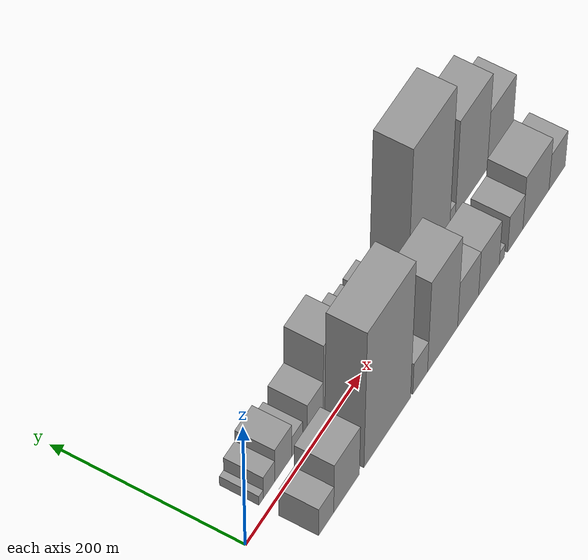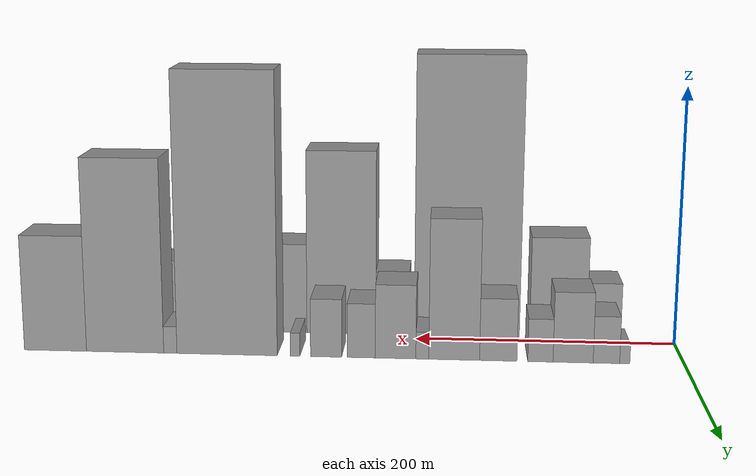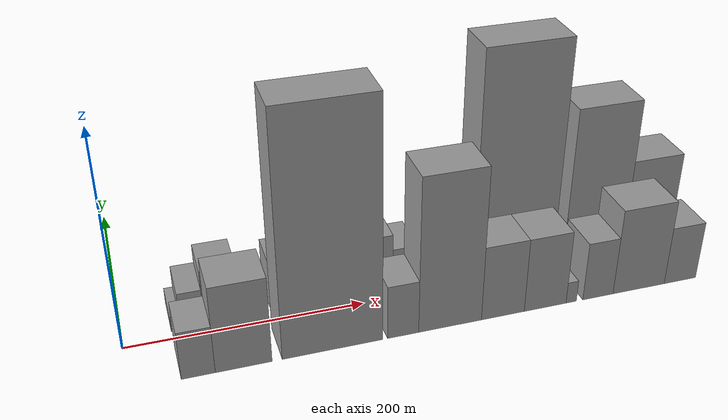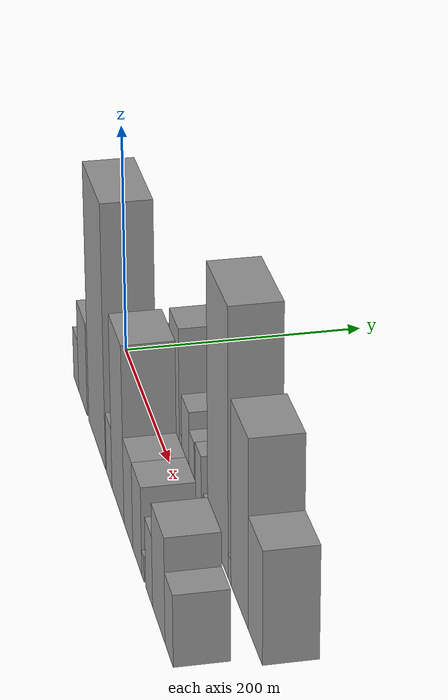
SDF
<sdf version="1.6">
 <world name="default">
  <scene>
   <sky><clouds><speed>12</speed></clouds></sky>
   <ambient>0.4 0.4 0.4 1</ambient>
   <background>0.7 0.7 0.7 1</background>
   <shadows>1</shadows>
  </scene>
  <gravity>0 0 -9.8066</gravity>
  <magnetic_field>6e-06 2.3e-05 -4.2e-05</magnetic_field>
  <physics default="0" name="default_physics" type="ode">
   <ode>
    <solver>
     <type>quick</type>
     <iters>10</iters>
     <sor>1.0</sor>
     <use_dynamic_moi_rescaling>0</use_dynamic_moi_rescaling>
    </solver>
    <constraints>
     <cfm>0</cfm>
     <erp>0.2</erp>
     <contact_max_correcting_vel>100</contact_max_correcting_vel>
     <contact_surface_layer>0.001</contact_surface_layer>
    </constraints>
   </ode>
   <max_step_size>0.004</max_step_size>
   <real_time_factor>1</real_time_factor>
   <real_time_update_rate>250</real_time_update_rate>
  </physics>
  <light name="sun" type="directional">
   <pose>0 0 10 0 0 0</pose>
   <diffuse>0.8 0.8 0.8 1</diffuse>
   <specular>0.2 0.2 0.2 1</specular>
   <attenuation>
    <range>1000</range>
    <constant>0.9</constant>
    <linear>0.01</linear>
    <quadratic>0.001</quadratic>
   </attenuation>
   <direction>-0.5 0.1 -0.9</direction>
  </light>
  <model name="building_1">
   <static>1</static>
   <pose>43.7433 30.0000 0 0.000000 0.000000 1.570796</pose>
   <link name="link">
    <pose>0 0 7.50 0 0 0</pose>
    <collision name="collision"><geometry><box><size>40.0000 7.4865 15.0000</size></box></geometry></collision>
    <visual name="visual">
     <cast_shadows>0</cast_shadows>
     <geometry><box><size>40.0000 7.4865 15.0000</size></box></geometry>
     <material>
      <script>
       <uri>model://grey_wall/materials/scripts</uri>
       <uri>model://grey_wall/materials/textures</uri>
       <name>vrc/grey_wall</name>
      </script>
     </material>
    </visual>
   </link>
  </model>
  <model name="building_2">
   <static>1</static>
   <pose>57.2591 30.0000 0 0.000000 0.000000 1.570796</pose>
   <link name="link">
    <pose>0 0 18.00 0 0 0</pose>
    <collision name="collision"><geometry><box><size>40.0000 19.5451 36.0000</size></box></geometry></collision>
    <visual name="visual">
     <cast_shadows>0</cast_shadows>
     <geometry><box><size>40.0000 19.5451 36.0000</size></box></geometry>
     <material>
      <script>
       <uri>model://grey_wall/materials/scripts</uri>
       <uri>model://grey_wall/materials/textures</uri>
       <name>vrc/grey_wall</name>
      </script>
     </material>
    </visual>
   </link>
  </model>
  <model name="building_3">
   <static>1</static>
   <pose>81.8233 30.0000 0 0.000000 0.000000 1.570796</pose>
   <link name="link">
    <pose>0 0 27.00 0 0 0</pose>
    <collision name="collision"><geometry><box><size>40.0000 29.5833 54.0000</size></box></geometry></collision>
    <visual name="visual">
     <cast_shadows>0</cast_shadows>
     <geometry><box><size>40.0000 29.5833 54.0000</size></box></geometry>
     <material>
      <script>
       <uri>model://grey_wall/materials/scripts</uri>
       <uri>model://grey_wall/materials/textures</uri>
       <name>vrc/grey_wall</name>
      </script>
     </material>
    </visual>
   </link>
  </model>
  <model name="building_4">
   <static>1</static>
   <pose>105.9422 30.0000 0 0.000000 0.000000 1.570796</pose>
   <link name="link">
    <pose>0 0 16.50 0 0 0</pose>
    <collision name="collision"><geometry><box><size>40.0000 18.6545 33.0000</size></box></geometry></collision>
    <visual name="visual">
     <cast_shadows>0</cast_shadows>
     <geometry><box><size>40.0000 18.6545 33.0000</size></box></geometry>
     <material>
      <script>
       <uri>model://grey_wall/materials/scripts</uri>
       <uri>model://grey_wall/materials/textures</uri>
       <name>vrc/grey_wall</name>
      </script>
     </material>
    </visual>
   </link>
  </model>
  <model name="building_5">
   <static>1</static>
   <pose>137.1378 30.0000 0 0.000000 0.000000 1.570796</pose>
   <link name="link">
    <pose>0 0 24.00 0 0 0</pose>
    <collision name="collision"><geometry><box><size>40.0000 27.7366 48.0000</size></box></geometry></collision>
    <visual name="visual">
     <cast_shadows>0</cast_shadows>
     <geometry><box><size>40.0000 27.7366 48.0000</size></box></geometry>
     <material>
      <script>
       <uri>model://grey_wall/materials/scripts</uri>
       <uri>model://grey_wall/materials/textures</uri>
       <name>vrc/grey_wall</name>
      </script>
     </material>
    </visual>
   </link>
  </model>
  <model name="building_6">
   <static>1</static>
   <pose>169.9851 30.0000 0 0.000000 0.000000 1.570796</pose>
   <link name="link">
    <pose>0 0 54.00 0 0 0</pose>
    <collision name="collision"><geometry><box><size>40.0000 37.9580 108.0000</size></box></geometry></collision>
    <visual name="visual">
     <cast_shadows>0</cast_shadows>
     <geometry><box><size>40.0000 37.9580 108.0000</size></box></geometry>
     <material>
      <script>
       <uri>model://grey_wall/materials/scripts</uri>
       <uri>model://grey_wall/materials/textures</uri>
       <name>vrc/grey_wall</name>
      </script>
     </material>
    </visual>
   </link>
  </model>
  <model name="building_7">
   <static>1</static>
   <pose>193.8160 30.0000 0 0.000000 0.000000 1.570796</pose>
   <link name="link">
    <pose>0 0 10.50 0 0 0</pose>
    <collision name="collision"><geometry><box><size>40.0000 9.7037 21.0000</size></box></geometry></collision>
    <visual name="visual">
     <cast_shadows>0</cast_shadows>
     <geometry><box><size>40.0000 9.7037 21.0000</size></box></geometry>
     <material>
      <script>
       <uri>model://grey_wall/materials/scripts</uri>
       <uri>model://grey_wall/materials/textures</uri>
       <name>vrc/grey_wall</name>
      </script>
     </material>
    </visual>
   </link>
  </model>
  <model name="building_8">
   <static>1</static>
   <pose>213.9045 30.0000 0 0.000000 0.000000 1.570796</pose>
   <link name="link">
    <pose>0 0 28.50 0 0 0</pose>
    <collision name="collision"><geometry><box><size>40.0000 30.4732 57.0000</size></box></geometry></collision>
    <visual name="visual">
     <cast_shadows>0</cast_shadows>
     <geometry><box><size>40.0000 30.4732 57.0000</size></box></geometry>
     <material>
      <script>
       <uri>model://grey_wall/materials/scripts</uri>
       <uri>model://grey_wall/materials/textures</uri>
       <name>vrc/grey_wall</name>
      </script>
     </material>
    </visual>
   </link>
  </model>
  <model name="building_9">
   <static>1</static>
   <pose>239.7759 30.0000 0 0.000000 0.000000 1.570796</pose>
   <link name="link">
    <pose>0 0 21.00 0 0 0</pose>
    <collision name="collision"><geometry><box><size>40.0000 21.2697 42.0000</size></box></geometry></collision>
    <visual name="visual">
     <cast_shadows>0</cast_shadows>
     <geometry><box><size>40.0000 21.2697 42.0000</size></box></geometry>
     <material>
      <script>
       <uri>model://grey_wall/materials/scripts</uri>
       <uri>model://grey_wall/materials/textures</uri>
       <name>vrc/grey_wall</name>
      </script>
     </material>
    </visual>
   </link>
  </model>
  <model name="building_10">
   <static>1</static>
   <pose>266.1989 30.0000 0 0.000000 0.000000 1.570796</pose>
   <link name="link">
    <pose>0 0 22.50 0 0 0</pose>
    <collision name="collision"><geometry><box><size>40.0000 23.5762 45.0000</size></box></geometry></collision>
    <visual name="visual">
     <cast_shadows>0</cast_shadows>
     <geometry><box><size>40.0000 23.5762 45.0000</size></box></geometry>
     <material>
      <script>
       <uri>model://grey_wall/materials/scripts</uri>
       <uri>model://grey_wall/materials/textures</uri>
       <name>vrc/grey_wall</name>
      </script>
     </material>
    </visual>
   </link>
  </model>
  <model name="building_11">
   <static>1</static>
   <pose>289.6335 30.0000 0 0.000000 0.000000 1.570796</pose>
   <link name="link">
    <pose>0 0 9.00 0 0 0</pose>
    <collision name="collision"><geometry><box><size>40.0000 7.2930 18.0000</size></box></geometry></collision>
    <visual name="visual">
     <cast_shadows>0</cast_shadows>
     <geometry><box><size>40.0000 7.2930 18.0000</size></box></geometry>
     <material>
      <script>
       <uri>model://grey_wall/materials/scripts</uri>
       <uri>model://grey_wall/materials/textures</uri>
       <name>vrc/grey_wall</name>
      </script>
     </material>
    </visual>
   </link>
  </model>
  <model name="building_12">
   <static>1</static>
   <pose>341.5662 30.0000 0 0.000000 0.000000 1.570796</pose>
   <link name="link">
    <pose>0 0 108.00 0 0 0</pose>
    <collision name="collision"><geometry><box><size>40.0000 76.5724 216.0000</size></box></geometry></collision>
    <visual name="visual">
     <cast_shadows>0</cast_shadows>
     <geometry><box><size>40.0000 76.5724 216.0000</size></box></geometry>
     <material>
      <script>
       <uri>model://grey_wall/materials/scripts</uri>
       <uri>model://grey_wall/materials/textures</uri>
       <name>vrc/grey_wall</name>
      </script>
     </material>
    </visual>
   </link>
  </model>
  <model name="building_13">
   <static>1</static>
   <pose>384.9433 30.0000 0 0.000000 0.000000 1.570796</pose>
   <link name="link">
    <pose>0 0 10.50 0 0 0</pose>
    <collision name="collision"><geometry><box><size>40.0000 10.1819 21.0000</size></box></geometry></collision>
    <visual name="visual">
     <cast_shadows>0</cast_shadows>
     <geometry><box><size>40.0000 10.1819 21.0000</size></box></geometry>
     <material>
      <script>
       <uri>model://grey_wall/materials/scripts</uri>
       <uri>model://grey_wall/materials/textures</uri>
       <name>vrc/grey_wall</name>
      </script>
     </material>
    </visual>
   </link>
  </model>
  <model name="building_14">
   <static>1</static>
   <pose>419.8376 30.0000 0 0.000000 0.000000 1.570796</pose>
   <link name="link">
    <pose>0 0 75.00 0 0 0</pose>
    <collision name="collision"><geometry><box><size>40.0000 59.6065 150.0000</size></box></geometry></collision>
    <visual name="visual">
     <cast_shadows>0</cast_shadows>
     <geometry><box><size>40.0000 59.6065 150.0000</size></box></geometry>
     <material>
      <script>
       <uri>model://grey_wall/materials/scripts</uri>
       <uri>model://grey_wall/materials/textures</uri>
       <name>vrc/grey_wall</name>
      </script>
     </material>
    </visual>
   </link>
  </model>
  <model name="building_15">
   <static>1</static>
   <pose>473.7648 30.0000 0 0.000000 0.000000 1.570796</pose>
   <link name="link">
    <pose>0 0 45.00 0 0 0</pose>
    <collision name="collision"><geometry><box><size>40.0000 48.2480 90.0000</size></box></geometry></collision>
    <visual name="visual">
     <cast_shadows>0</cast_shadows>
     <geometry><box><size>40.0000 48.2480 90.0000</size></box></geometry>
     <material>
      <script>
       <uri>model://grey_wall/materials/scripts</uri>
       <uri>model://grey_wall/materials/textures</uri>
       <name>vrc/grey_wall</name>
      </script>
     </material>
    </visual>
   </link>
  </model>
  <model name="building_16">
   <static>1</static>
   <pose>53.1254 -30.0000 0 0.000000 0.000000 1.570796</pose>
   <link name="link">
    <pose>0 0 22.50 0 0 0</pose>
    <collision name="collision"><geometry><box><size>40.0000 26.2508 45.0000</size></box></geometry></collision>
    <visual name="visual">
     <cast_shadows>0</cast_shadows>
     <geometry><box><size>40.0000 26.2508 45.0000</size></box></geometry>
     <material>
      <script>
       <uri>model://grey_wall/materials/scripts</uri>
       <uri>model://grey_wall/materials/textures</uri>
       <name>vrc/grey_wall</name>
      </script>
     </material>
    </visual>
   </link>
  </model>
  <model name="building_17">
   <static>1</static>
   <pose>88.5936 -30.0000 0 0.000000 0.000000 1.570796</pose>
   <link name="link">
    <pose>0 0 40.50 0 0 0</pose>
    <collision name="collision"><geometry><box><size>40.0000 44.6855 81.0000</size></box></geometry></collision>
    <visual name="visual">
     <cast_shadows>0</cast_shadows>
     <geometry><box><size>40.0000 44.6855 81.0000</size></box></geometry>
     <material>
      <script>
       <uri>model://grey_wall/materials/scripts</uri>
       <uri>model://grey_wall/materials/textures</uri>
       <name>vrc/grey_wall</name>
      </script>
     </material>
    </visual>
   </link>
  </model>
  <model name="building_18">
   <static>1</static>
   <pose>160.2985 -30.0000 0 0.000000 0.000000 1.570796</pose>
   <link name="link">
    <pose>0 0 111.00 0 0 0</pose>
    <collision name="collision"><geometry><box><size>40.0000 82.7242 222.0000</size></box></geometry></collision>
    <visual name="visual">
     <cast_shadows>0</cast_shadows>
     <geometry><box><size>40.0000 82.7242 222.0000</size></box></geometry>
     <material>
      <script>
       <uri>model://grey_wall/materials/scripts</uri>
       <uri>model://grey_wall/materials/textures</uri>
       <name>vrc/grey_wall</name>
      </script>
     </material>
    </visual>
   </link>
  </model>
  <model name="building_19">
   <static>1</static>
   <pose>218.8996 -30.0000 0 0.000000 0.000000 1.570796</pose>
   <link name="link">
    <pose>0 0 25.50 0 0 0</pose>
    <collision name="collision"><geometry><box><size>40.0000 26.4780 51.0000</size></box></geometry></collision>
    <visual name="visual">
     <cast_shadows>0</cast_shadows>
     <geometry><box><size>40.0000 26.4780 51.0000</size></box></geometry>
     <material>
      <script>
       <uri>model://grey_wall/materials/scripts</uri>
       <uri>model://grey_wall/materials/textures</uri>
       <name>vrc/grey_wall</name>
      </script>
     </material>
    </visual>
   </link>
  </model>
  <model name="building_20">
   <static>1</static>
   <pose>259.5537 -30.0000 0 0.000000 0.000000 1.570796</pose>
   <link name="link">
    <pose>0 0 73.50 0 0 0</pose>
    <collision name="collision"><geometry><box><size>40.0000 54.8301 147.0000</size></box></geometry></collision>
    <visual name="visual">
     <cast_shadows>0</cast_shadows>
     <geometry><box><size>40.0000 54.8301 147.0000</size></box></geometry>
     <material>
      <script>
       <uri>model://grey_wall/materials/scripts</uri>
       <uri>model://grey_wall/materials/textures</uri>
       <name>vrc/grey_wall</name>
      </script>
     </material>
    </visual>
   </link>
  </model>
  <model name="building_21">
   <static>1</static>
   <pose>306.1615 -30.0000 0 0.000000 0.000000 1.570796</pose>
   <link name="link">
    <pose>0 0 36.00 0 0 0</pose>
    <collision name="collision"><geometry><box><size>40.0000 38.3855 72.0000</size></box></geometry></collision>
    <visual name="visual">
     <cast_shadows>0</cast_shadows>
     <geometry><box><size>40.0000 38.3855 72.0000</size></box></geometry>
     <material>
      <script>
       <uri>model://grey_wall/materials/scripts</uri>
       <uri>model://grey_wall/materials/textures</uri>
       <name>vrc/grey_wall</name>
      </script>
     </material>
    </visual>
   </link>
  </model>
  <model name="building_22">
   <static>1</static>
   <pose>344.4972 -30.0000 0 0.000000 0.000000 1.570796</pose>
   <link name="link">
    <pose>0 0 36.00 0 0 0</pose>
    <collision name="collision"><geometry><box><size>40.0000 38.2858 72.0000</size></box></geometry></collision>
    <visual name="visual">
     <cast_shadows>0</cast_shadows>
     <geometry><box><size>40.0000 38.2858 72.0000</size></box></geometry>
     <material>
      <script>
       <uri>model://grey_wall/materials/scripts</uri>
       <uri>model://grey_wall/materials/textures</uri>
       <name>vrc/grey_wall</name>
      </script>
     </material>
    </visual>
   </link>
  </model>
  <model name="building_23">
   <static>1</static>
   <pose>368.4690 -30.0000 0 0.000000 0.000000 1.570796</pose>
   <link name="link">
    <pose>0 0 10.50 0 0 0</pose>
    <collision name="collision"><geometry><box><size>40.0000 9.6578 21.0000</size></box></geometry></collision>
    <visual name="visual">
     <cast_shadows>0</cast_shadows>
     <geometry><box><size>40.0000 9.6578 21.0000</size></box></geometry>
     <material>
      <script>
       <uri>model://grey_wall/materials/scripts</uri>
       <uri>model://grey_wall/materials/textures</uri>
       <name>vrc/grey_wall</name>
      </script>
     </material>
    </visual>
   </link>
  </model>
  <model name="building_24">
   <static>1</static>
   <pose>393.5481 -30.0000 0 0.000000 0.000000 1.570796</pose>
   <link name="link">
    <pose>0 0 28.50 0 0 0</pose>
    <collision name="collision"><geometry><box><size>40.0000 28.5005 57.0000</size></box></geometry></collision>
    <visual name="visual">
     <cast_shadows>0</cast_shadows>
     <geometry><box><size>40.0000 28.5005 57.0000</size></box></geometry>
     <material>
      <script>
       <uri>model://grey_wall/materials/scripts</uri>
       <uri>model://grey_wall/materials/textures</uri>
       <name>vrc/grey_wall</name>
      </script>
     </material>
    </visual>
   </link>
  </model>
  <model name="building_25">
   <static>1</static>
   <pose>432.4898 -30.0000 0 0.000000 0.000000 1.570796</pose>
   <link name="link">
    <pose>0 0 42.00 0 0 0</pose>
    <collision name="collision"><geometry><box><size>40.0000 49.3829 84.0000</size></box></geometry></collision>
    <visual name="visual">
     <cast_shadows>0</cast_shadows>
     <geometry><box><size>40.0000 49.3829 84.0000</size></box></geometry>
     <material>
      <script>
       <uri>model://grey_wall/materials/scripts</uri>
       <uri>model://grey_wall/materials/textures</uri>
       <name>vrc/grey_wall</name>
      </script>
     </material>
    </visual>
   </link>
  </model>
  <model name="building_26">
   <static>1</static>
   <pose>472.6439 -30.0000 0 0.000000 0.000000 1.570796</pose>
   <link name="link">
    <pose>0 0 28.50 0 0 0</pose>
    <collision name="collision"><geometry><box><size>40.0000 30.9252 57.0000</size></box></geometry></collision>
    <visual name="visual">
     <cast_shadows>0</cast_shadows>
     <geometry><box><size>40.0000 30.9252 57.0000</size></box></geometry>
     <material>
      <script>
       <uri>model://grey_wall/materials/scripts</uri>
       <uri>model://grey_wall/materials/textures</uri>
       <name>vrc/grey_wall</name>
      </script>
     </material>
    </visual>
   </link>
  </model>
 </world>
</sdf>
